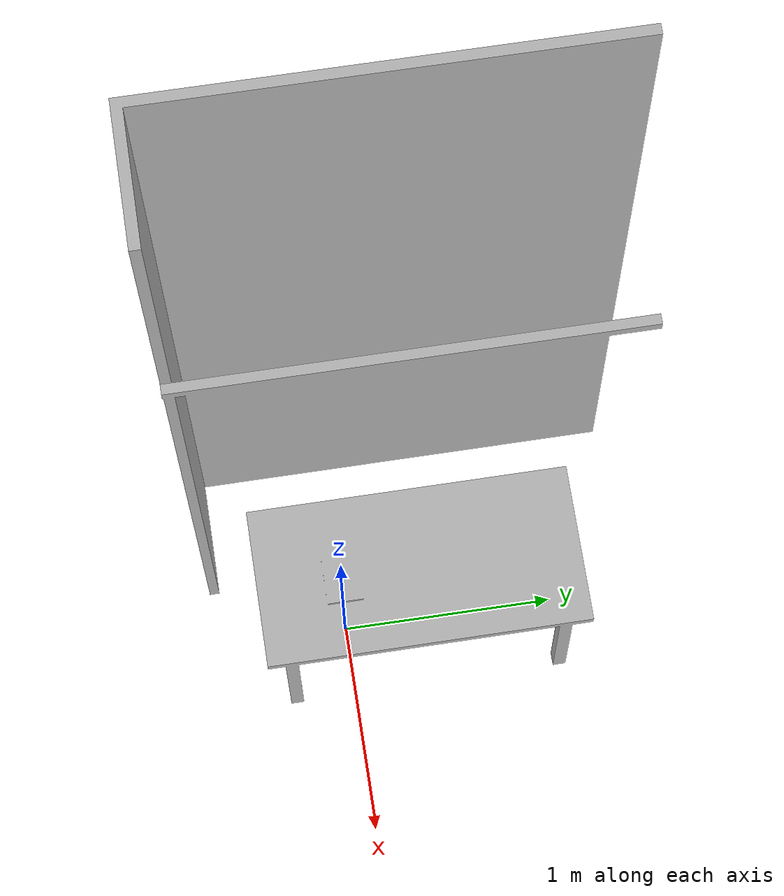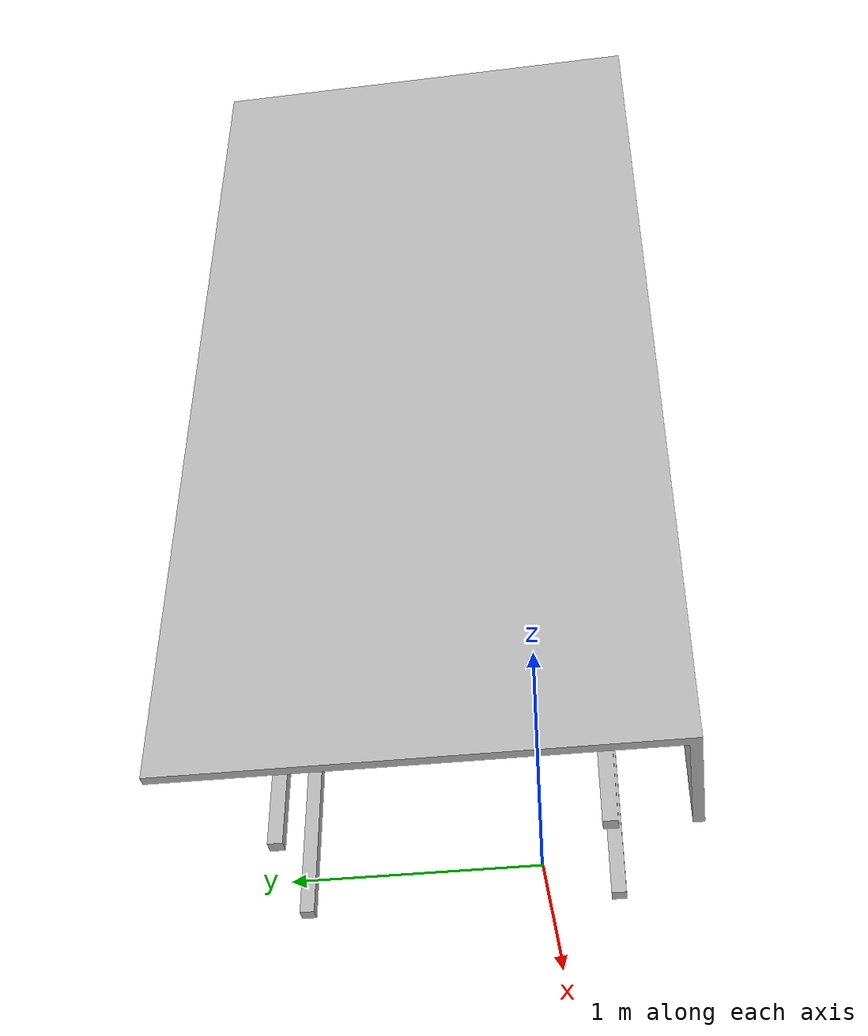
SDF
<?xml version="1.0" ?>
<sdf version="1.5">
    <model name="arq_ur5_setup">
        <static>true</static>
        <link name="link">
            <inertial>
                <mass>20</mass>
            </inertial>
            <collision name="collision">
                <pose>0.0 0.0 0.0 0 0.0 0.0</pose>
                <geometry>
                    <mesh>
                        <uri>model://arq_ur5_setup/meshes/arq_ur5_setup.stl</uri>
                    </mesh>
                </geometry>
            </collision>
            <visual name="visual">
                <pose>0.0 0.0 0.0 0 0.0 0.0</pose>
                <geometry>
                    <mesh>
                        <uri>model://arq_ur5_setup/meshes/arq_ur5_setup.stl</uri>
                    </mesh>
                </geometry>
            </visual>
        </link>
    </model>
</sdf>
